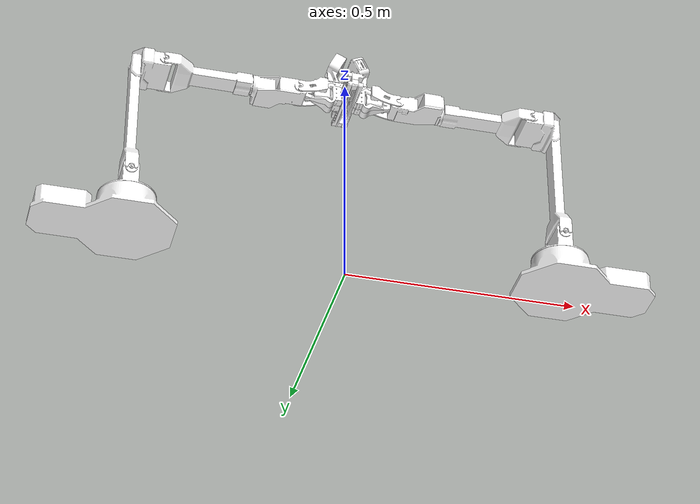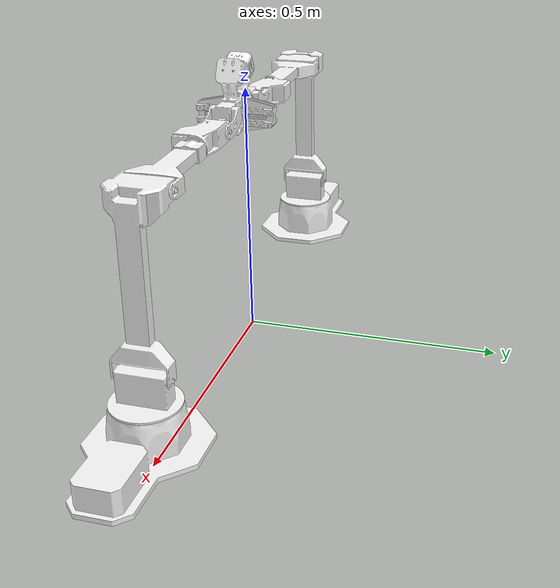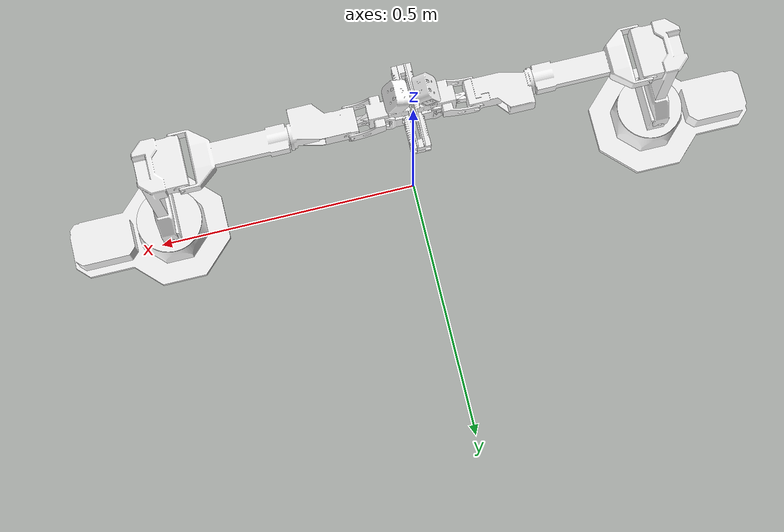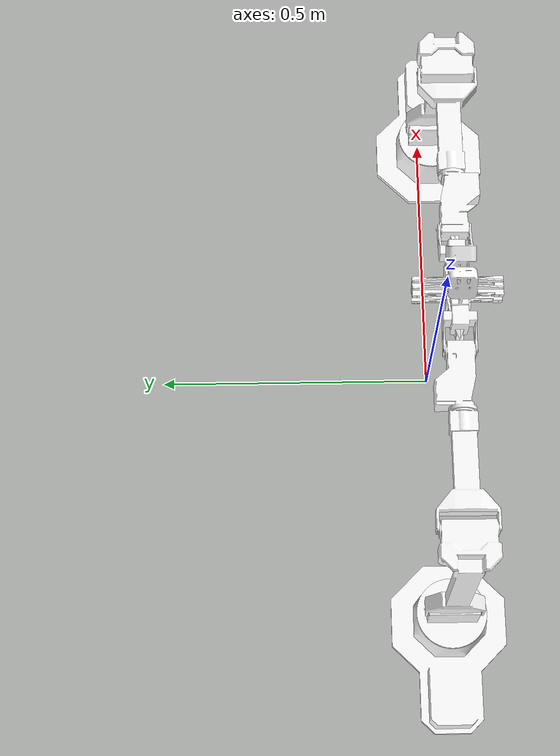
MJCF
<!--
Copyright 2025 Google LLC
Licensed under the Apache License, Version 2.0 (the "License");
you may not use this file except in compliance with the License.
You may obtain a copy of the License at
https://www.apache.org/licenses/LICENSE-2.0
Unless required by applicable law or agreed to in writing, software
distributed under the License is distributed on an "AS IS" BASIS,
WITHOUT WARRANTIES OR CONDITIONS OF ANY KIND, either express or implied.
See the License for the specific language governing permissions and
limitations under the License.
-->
<mujoco model="aloha">
  <compiler angle="radian" assetdir="assets" autolimits="true"/>

  <option cone="elliptic" impratio="10"/>

  <asset>
    <texture name="arm_rgb" file="aloha_mapped_mesh/1k_textures/Arm_material_BaseColor.png" type="2d"/>
    <texture name="arm_orm" file="aloha_mapped_mesh/1k_textures/Arm_material_ORM.png" type="2d"/>
    <texture name="arm_normal" file = "aloha_mapped_mesh/1k_textures/Arm_material_Normal.png" type="2d"/>
    <material name="arm_material">
      <layer role="rgb" texture="arm_rgb"/>
      <layer role="orm" texture="arm_orm"/>
      <layer role="normal" texture="arm_normal"/>
    </material>

    <mesh file="aloha_mapped_mesh/vx300s_1_base.obj" />
    <mesh file="aloha_mapped_mesh/vx300s_2_shoulder.obj" />
    <mesh file="aloha_mapped_mesh/vx300s_3_upper_arm.obj" />
    <mesh file="aloha_mapped_mesh/vx300s_4_upper_forearm.obj" />
    <mesh file="aloha_mapped_mesh/vx300s_5_lower_forearm.obj" />
    <mesh file="aloha_mapped_mesh/vx300s_6_wrist.obj" />
    <mesh file="aloha_mapped_mesh/vx300s_7_gripper_prop_bar.obj"/>
    <mesh file="aloha_mapped_mesh/vx300s_8_custom_finger_left.obj"/>
    <mesh file="aloha_mapped_mesh/vx300s_8_custom_finger_right.obj"/>
    <mesh file="aloha_mapped_mesh/d405_solid.obj"/>
  </asset>

  <default>
    <default class="vx300s">
      <joint axis="0 1 0" actuatorfrcrange="-35 35"/>
      <site group="4"/>
      <default class="waist">
        <joint axis="0 0 1" range="-3.14158 3.14158" damping="5.76"/>
        <position ctrlrange="-3.14158 3.14158" kp="43"/>
      </default>
      <default class="shoulder">
        <joint range="-1.85005 1.25664" armature="0.395" frictionloss="2.0" damping="20.0" actuatorfrcrange="-144 144"/>
        <position ctrlrange="-1.85005 1.25664" kp="265"/>
      </default>
      <default class="elbow">
        <joint range="-1.76278 1.6057" armature="0.383" frictionloss="1.15" damping="18.49" actuatorfrcrange="-59 59"/>
        <position ctrlrange="-1.76278 1.6057" kp="227"/>
      </default>
      <default class="forearm_roll">
        <joint axis="1 0 0" range="-3.14158 3.14158" armature="0.14" damping="6.78" actuatorfrcrange="-22 22"/>
        <position ctrlrange="-3.14158 3.14158" kp="78"/>
      </default>
      <default class="wrist_angle">
        <joint range="-1.8675 2.23402" armature="0.008" damping="6.28"/>
        <position ctrlrange="-1.8675 2.23402" kp="37"/>
      </default>
      <default class="wrist_rotate">
        <joint axis="1 0 0" range="-3.14158 3.14158" damping="1.2"/>
        <position ctrlrange="-3.14158 3.14158" kp="10.4"/>
      </default>
      <default class="finger">
        <joint type="slide" armature="0.243" damping="40"/>
        <position ctrlrange="0.002 0.037" kp="2000" kv="124"/>
        <default class="left_finger">
          <joint range="0 0.041" axis="0 0 -1"/>
        </default>
        <default class="right_finger">
          <joint range="0 0.041" axis="0 0 -1"/>
        </default>
      </default>
      <default class="visual">
        <geom type="mesh" contype="0" conaffinity="0" density="0" group="2" material="arm_material"/>
      </default>
      <default class="collision">
        <geom group="3" type="mesh"/>
        <default class="finger_collision">
          <geom condim="4" solimp="2 1 0.01" solref="0.01 1" friction="1 0.005 0.0001"/>
        </default>
        <default class="sphere_collision">
          <geom type="sphere" size="0.0006" rgba="1 0 0 1"/>
        </default>
      </default>
    </default>
  </default>

  <worldbody>
    <camera name="teleoperator_pov" pos="0 -1.354 0.685" xyaxes="1 0 0 0 0.2 .8"/>
    <camera name="collaborator_pov" pos="0 1.5 0.8" xyaxes="-1 0 0 0 -0.2 .8"/>

    <body name="left/base_link" childclass="vx300s" pos="-0.469 -0.019 0.02">
      <inertial pos="-0.0534774 -0.000562575 0.0205961" quat="-0.00292324 0.712517 0.00480387 0.701633" mass="0.969034"
        diaginertia="0.0071633 0.00602451 0.00169819"/>
      <geom quat="1 0 0 1" class="visual" mesh="vx300s_1_base"/>
      <geom quat="1 0 0 1" mesh="vx300s_1_base" class="collision"/>
      <body name="left/shoulder_link" pos="0 0 0.079">
        <inertial pos="0.000259233 -3.3552e-06 0.0116129" quat="-0.476119 0.476083 0.52279 0.522826" mass="0.798614"
          diaginertia="0.00120156 0.00113744 0.0009388"/>
        <joint name="left/waist" class="waist"/>
        <geom pos="0 0 -0.003" quat="1 0 0 1" class="visual" mesh="vx300s_2_shoulder"/>
        <geom pos="0 0 -0.003" quat="1 0 0 1" mesh="vx300s_2_shoulder" class="collision"/>
        <body name="left/upper_arm_link" pos="0 0 0.04805">
          <inertial pos="0.0206949 4e-10 0.226459" quat="0 0.0728458 0 0.997343" mass="0.792592"
            diaginertia="0.00911338 0.008925 0.000759317"/>
          <joint name="left/shoulder" class="shoulder"/>
          <geom quat="1 0 0 1" class="visual" mesh="vx300s_3_upper_arm"/>
          <geom quat="1 0 0 1" class="collision" mesh="vx300s_3_upper_arm"/>
          <body name="left/upper_forearm_link" pos="0.05955 0 0.3">
            <inertial pos="0.105723 0 0" quat="-0.000621631 0.704724 0.0105292 0.709403" mass="0.322228"
              diaginertia="0.00144107 0.00134228 0.000152047"/>
            <joint name="left/elbow" class="elbow"/>
            <geom class="visual" mesh="vx300s_4_upper_forearm"/>
            <geom class="collision" mesh="vx300s_4_upper_forearm"/>
            <body name="left/lower_forearm_link" pos="0.2 0 0">
              <inertial pos="0.0513477 0.00680462 0" quat="-0.702604 -0.0796724 -0.702604 0.0796724" mass="0.414823"
                diaginertia="0.0005911 0.000546493 0.000155707"/>
              <joint name="left/forearm_roll" class="forearm_roll"/>
              <geom quat="0 1 0 0" class="visual" mesh="vx300s_5_lower_forearm"/>
              <geom quat="0 1 0 0" class="collision" mesh="vx300s_5_lower_forearm"/>
              <body name="left/wrist_link" pos="0.1 0 0">
                <inertial pos="0.046743 -7.6652e-06 0.010565" quat="-0.00100191 0.544586 0.0026583 0.8387"
                  mass="0.115395" diaginertia="5.45707e-05 4.63101e-05 4.32692e-05"/>
                <joint name="left/wrist_angle" class="wrist_angle"/>
                <geom quat="1 0 0 1" class="visual" mesh="vx300s_6_wrist"/>
                <geom quat="1 0 0 1" class="collision" mesh="vx300s_6_wrist"/>
                <body name="left/gripper_link" pos="0.069744 0 0">
                  <inertial pos="0.0395662 -2.56311e-07 0.00400649" quat="0.62033 0.619916 -0.339682 0.339869"
                    mass="0.251652" diaginertia="0.000689546 0.000650316 0.000468142"/>
                  <joint name="left/wrist_rotate" class="wrist_rotate"/>
                  <site name="left/gripper" pos="0.15 0 0" group="5"/>
                  <body name="left/gripper_base" euler="0 1.57 -1.57" pos="0.035 0 0">
                    <inertial pos="0.000182154 -0.0341589 -0.0106026" quat="0.435286 0.557074 -0.551539 0.442718"
                      mass="0.42158" diaginertia="0.00110438 0.000790537 0.000469727"/>
                    <geom class="visual" mesh="vx300s_7_gripper_prop_bar"/>
                    <geom class="collision" mesh="vx300s_7_gripper_prop_bar"/>
                    <geom class="visual" pos="0 -0.0824748 -0.0095955" quat="0 0 -0.21644 -0.976296" type="mesh" mesh="d405_solid"/>
                    <geom class="collision" pos="0 -0.0824748 -0.0095955" quat="0 0 -0.21644 -0.976296" type="mesh" mesh="d405_solid"/>
                    <camera name="wrist_cam_left" pos="-0.011 -0.0814748 -0.0095955" mode="fixed" euler="2.70525955359 0 0"
                            focal="1.93e-3 1.93e-3" resolution="1280 720" sensorsize="3896e-6 2140e-6"/>
                      <body name="left/left_finger_link" pos="0.0191 -0.0141637 0.0211727" quat="1 -1 -1 1">
                      <inertial pos="0.0143478 -0.0284791 0.0122897" quat="0.535486 0.458766 -0.450407 0.547651"
                        mass="0.0862937" diaginertia="5.86848e-05 4.46887e-05 1.8397e-05"/>
                      <joint name="left/left_finger" class="left_finger"/>
                      <geom pos="0.0141637 0.0211727 0.06" class="visual" quat="1 1 1 -1" type="mesh"
                        mesh="vx300s_8_custom_finger_left"/>
                      <geom pos="0.0141637 0.0211727 0.06" class="finger_collision" quat="1 1 1 -1" type="mesh"
                        mesh="vx300s_8_custom_finger_left"/>
                      <geom pos="0.013  -0.0892 0.0268" class="sphere_collision"/>
                      <geom pos="0.0222 -0.0892 0.0268" class="sphere_collision"/>
                      <geom pos="0.0182 -0.0845 0.0266" class="sphere_collision"/>
                      <site name="left/left_finger" pos="0.015 -0.06 0.02"/>
                    </body>
                    <body name="left/right_finger_link" pos="-0.0191 -0.0141637 0.0211727" quat="1 1 1 1">
                      <inertial pos="0.0143711 0.0284792 0.0121421" quat="0.461317 0.537615 -0.545478 0.447894"
                        mass="0.0862932" diaginertia="5.86828e-05 4.46887e-05 1.83949e-05"/>
                      <joint name="left/right_finger" class="right_finger"/>
                      <geom pos="0.0141637 -0.0211727 0.0597067" class="visual" quat="1 -1 -1 -1" type="mesh"
                        mesh="vx300s_8_custom_finger_right"/>
                      <geom pos="0.0141637 -0.0211727 0.0597067" class="finger_collision" quat="1 -1 -1 -1" type="mesh"
                        mesh="vx300s_8_custom_finger_right"/>
                      <geom pos="0.013  0.0892 0.0268" class="sphere_collision"/>
                      <geom pos="0.0222 0.0892 0.0268" class="sphere_collision"/>
                      <geom pos="0.0182 0.0845 0.0266" class="sphere_collision"/>
                      <site name="left/right_finger" pos="0.015 0.06 0.02"/>
                    </body>
                  </body>
                </body>
              </body>
            </body>
          </body>
        </body>
      </body>
    </body>

    <body name="right/base_link" childclass="vx300s" pos="0.469 -0.019 0.02" quat="0 0 0 1">
      <inertial pos="-0.0534774 -0.000562575 0.0205961" quat="-0.00292324 0.712517 0.00480387 0.701633" mass="0.969034"
        diaginertia="0.0071633 0.00602451 0.00169819"/>
      <geom quat="1 0 0 1" class="visual" mesh="vx300s_1_base"/>
      <geom quat="1 0 0 1" mesh="vx300s_1_base" class="collision"/>
      <body name="right/shoulder_link" pos="0 0 0.079">
        <inertial pos="0.000259233 -3.3552e-06 0.0116129" quat="-0.476119 0.476083 0.52279 0.522826" mass="0.798614"
          diaginertia="0.00120156 0.00113744 0.0009388"/>
        <joint name="right/waist" class="waist"/>
        <geom pos="0 0 -0.003" quat="1 0 0 1" class="visual" mesh="vx300s_2_shoulder"/>
        <geom pos="0 0 -0.003" quat="1 0 0 1" mesh="vx300s_2_shoulder" class="collision"/>
        <body name="right/upper_arm_link" pos="0 0 0.04805">
          <inertial pos="0.0206949 4e-10 0.226459" quat="0 0.0728458 0 0.997343" mass="0.792592"
            diaginertia="0.00911338 0.008925 0.000759317"/>
          <joint name="right/shoulder" class="shoulder"/>
          <geom quat="1 0 0 1" class="visual" mesh="vx300s_3_upper_arm"/>
          <geom quat="1 0 0 1" class="collision" mesh="vx300s_3_upper_arm"/>
          <body name="right/upper_forearm_link" pos="0.05955 0 0.3">
            <inertial pos="0.105723 0 0" quat="-0.000621631 0.704724 0.0105292 0.709403" mass="0.322228"
              diaginertia="0.00144107 0.00134228 0.000152047"/>
            <joint name="right/elbow" class="elbow"/>
            <geom class="visual" mesh="vx300s_4_upper_forearm"/>
            <geom class="collision" mesh="vx300s_4_upper_forearm"/>
            <body name="right/lower_forearm_link" pos="0.2 0 0">
              <inertial pos="0.0513477 0.00680462 0" quat="-0.702604 -0.0796724 -0.702604 0.0796724" mass="0.414823"
                diaginertia="0.0005911 0.000546493 0.000155707"/>
              <joint name="right/forearm_roll" class="forearm_roll"/>
              <geom quat="0 1 0 0" class="visual" mesh="vx300s_5_lower_forearm"/>
              <geom quat="0 1 0 0" class="collision" mesh="vx300s_5_lower_forearm"/>
              <body name="right/wrist_link" pos="0.1 0 0">
                <inertial pos="0.046743 -7.6652e-06 0.010565" quat="-0.00100191 0.544586 0.0026583 0.8387"
                  mass="0.115395" diaginertia="5.45707e-05 4.63101e-05 4.32692e-05"/>
                <joint name="right/wrist_angle" class="wrist_angle"/>
                <geom quat="1 0 0 1" class="visual" mesh="vx300s_6_wrist"/>
                <geom quat="1 0 0 1" class="collision" mesh="vx300s_6_wrist"/>
                <body name="right/gripper_link" pos="0.069744 0 0">
                  <inertial pos="0.0395662 -2.56311e-07 0.00400649" quat="0.62033 0.619916 -0.339682 0.339869"
                    mass="0.251652" diaginertia="0.000689546 0.000650316 0.000468142"/>
                  <joint name="right/wrist_rotate" class="wrist_rotate"/>
                  <site name="right/gripper" pos="0.15 0 0" group="5"/>
                  <body name="right/gripper_base" euler="0 1.57 -1.57" pos="0.035 0 0">
                    <inertial pos="0.000182154 -0.0341589 -0.0106026" quat="0.435286 0.557074 -0.551539 0.442718"
                      mass="0.42158" diaginertia="0.00110438 0.000790537 0.000469727"/>
                    <geom class="visual" mesh="vx300s_7_gripper_prop_bar"/>
                    <geom class="collision" mesh="vx300s_7_gripper_prop_bar"/>
                    <geom class="visual" pos="0 -0.0824748 -0.0095955" quat="0 0 -0.21644 -0.976296" type="mesh" mesh="d405_solid"/>
                    <geom class="collision" pos="0 -0.0824748 -0.0095955" quat="0 0 -0.21644 -0.976296" type="mesh" mesh="d405_solid"/>
                    <camera name="wrist_cam_right" pos="-0.011 -0.0814748 -0.0095955" mode="fixed" euler="2.70525955359 0 0"
                            focal="1.93e-3 1.93e-3" resolution="1280 720" sensorsize="3896e-6 2140e-6"/>
                    <body name="right/left_finger_link" pos="0.0191 -0.0141637 0.0211727" quat="1 -1 -1 1">
                      <inertial pos="0.0143478 -0.0284791 0.0122897" quat="0.535486 0.458766 -0.450407 0.547651"
                        mass="0.0862937" diaginertia="5.86848e-05 4.46887e-05 1.8397e-05"/>
                      <joint name="right/left_finger" class="left_finger"/>
                      <geom pos="0.0141637 0.0211727 0.06" class="visual" quat="1 1 1 -1" type="mesh"
                        mesh="vx300s_8_custom_finger_left"/>
                      <geom pos="0.0141637 0.0211727 0.06" class="finger_collision" quat="1 1 1 -1" type="mesh"
                        mesh="vx300s_8_custom_finger_left"/>
                      <geom pos="0.013  -0.0892 0.0268" class="sphere_collision"/>
                      <geom pos="0.0222 -0.0892 0.0268" class="sphere_collision"/>
                      <geom pos="0.0182 -0.0845 0.0266" class="sphere_collision"/>
                      <site name="right/left_finger" pos="0.015 -0.06 0.02"/>
                    </body>
                    <body name="right/right_finger_link" pos="-0.0191 -0.0141637 0.0211727" quat="1 1 1 1">
                      <inertial pos="0.0143711 0.0284792 0.0121421" quat="0.461317 0.537615 -0.545478 0.447894"
                        mass="0.0862932" diaginertia="5.86828e-05 4.46887e-05 1.83949e-05"/>
                      <joint name="right/right_finger" class="right_finger"/>
                      <geom pos="0.0141637 -0.0211727 0.0597067" class="visual" quat="1 -1 -1 -1" type="mesh"
                        mesh="vx300s_8_custom_finger_right"/>
                      <geom pos="0.0141637 -0.0211727 0.0597067" class="finger_collision" quat="1 -1 -1 -1" type="mesh"
                        mesh="vx300s_8_custom_finger_right"/>
                      <geom pos="0.013  0.0892 0.0268" class="sphere_collision"/>
                      <geom pos="0.0222 0.0892 0.0268" class="sphere_collision"/>
                      <geom pos="0.0182 0.0845 0.0266" class="sphere_collision"/>
                      <site name="right/right_finger" pos="0.015 0.06 0.02"/>
                    </body>
                  </body>
                </body>
              </body>
            </body>
          </body>
        </body>
      </body>
    </body>
  </worldbody>

  <contact>
    <exclude body1="left/base_link" body2="left/shoulder_link"/>
    <exclude body1="right/base_link" body2="right/shoulder_link"/>
  </contact>

  <equality>
    <joint joint1="left/left_finger" joint2="left/right_finger" polycoef="0 1 0 0 0"/>
    <joint joint1="right/left_finger" joint2="right/right_finger" polycoef="0 1 0 0 0"/>
  </equality>

  <include file="joint_position_actuators.xml"/>
</mujoco>

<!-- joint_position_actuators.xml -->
<mujoco>
  <actuator>
    <position class="waist" name="left/waist" joint="left/waist"/>
    <position class="shoulder" name="left/shoulder" joint="left/shoulder"/>
    <position class="elbow" name="left/elbow" joint="left/elbow"/>
    <position class="forearm_roll" name="left/forearm_roll" joint="left/forearm_roll"/>
    <position class="wrist_angle" name="left/wrist_angle" joint="left/wrist_angle"/>
    <position class="wrist_rotate" name="left/wrist_rotate" joint="left/wrist_rotate"/>
    <position class="finger" name="left/gripper" joint="left/left_finger"/>

    <position class="waist" name="right/waist" joint="right/waist"/>
    <position class="shoulder" name="right/shoulder" joint="right/shoulder"/>
    <position class="elbow" name="right/elbow" joint="right/elbow"/>
    <position class="forearm_roll" name="right/forearm_roll" joint="right/forearm_roll"/>
    <position class="wrist_angle" name="right/wrist_angle" joint="right/wrist_angle"/>
    <position class="wrist_rotate" name="right/wrist_rotate" joint="right/wrist_rotate"/>
    <position class="finger" name="right/gripper" joint="right/left_finger"/>
  </actuator>

  <keyframe>
    <key name="neutral_pose" qpos="
    0 -0.96 1.16 0 -0.3 0 0.0084 0.0084
    0 -0.96 1.16 0 -0.3 0 0.0084 0.0084"
      ctrl="
    0 -0.96 1.16 0 -0.3 0 0.0084
    0 -0.96 1.16 0 -0.3 0 0.0084"/>
  </keyframe>
</mujoco>
